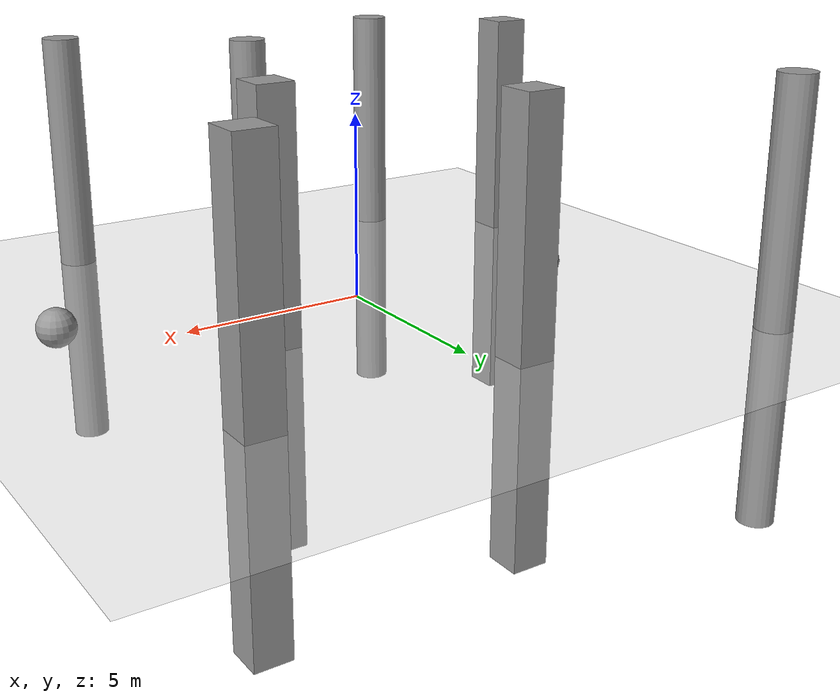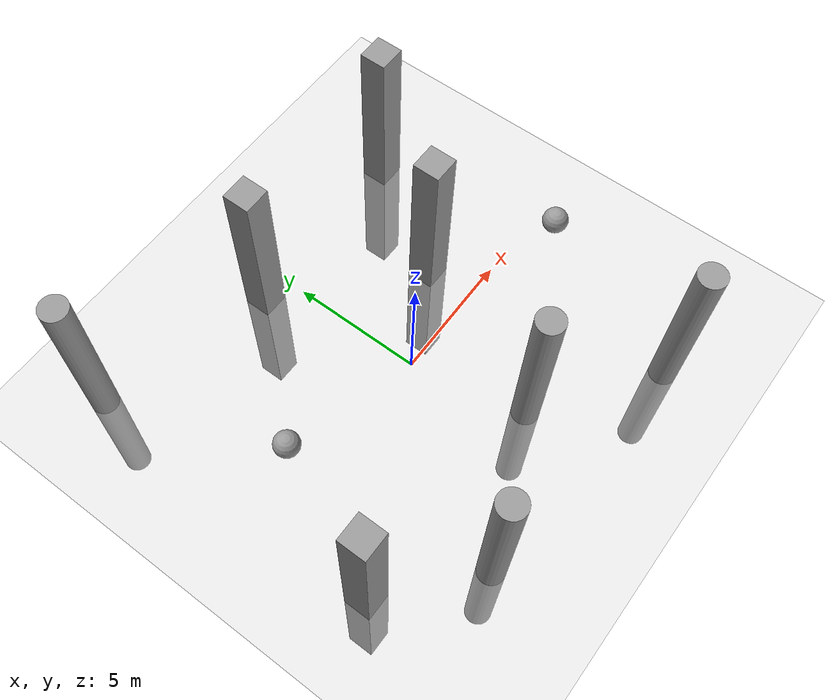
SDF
<sdf version="1.7">
 <world name="default">
  <light name="sun" type="directional">
   <pose>0 0 10 0 -0 0</pose>
   <diffuse>0.8 0.8 0.8 1</diffuse>
   <specular>0.2 0.2 0.2 1</specular>
   <attenuation>
    <range>1000</range>
    <constant>0.9</constant>
    <linear>0.01</linear>
    <quadratic>0.001</quadratic>
   </attenuation>
   <direction>-0.5 0.1 -0.9</direction>
   <spot><inner_angle>0</inner_angle><outer_angle>0</outer_angle><falloff>0</falloff></spot>
  </light>
  <model name="ground_plane">
   <static>1</static>
   <link name="link">
    <collision name="collision">
     <geometry><plane><normal>0 0 1</normal><size>100 100</size></plane></geometry>
     <surface>
      <contact><collide_bitmask>65535</collide_bitmask></contact>
      <friction><ode><mu>100</mu><mu2>50</mu2></ode></friction>
     </surface>
    </collision>
    <visual name="visual">
     <cast_shadows>0</cast_shadows>
     <geometry><plane><normal>0 0 1</normal><size>100 100</size></plane></geometry>
     <material>
      <script><uri>file://media/materials/scripts/gazebo.material</uri><name>Gazebo/Grey</name></script>
     </material>
    </visual>
   </link>
  </model>
  <gravity>0 0 -9.8</gravity>
  <magnetic_field>6e-06 2.3e-05 -4.2e-05</magnetic_field>
  <atmosphere type="adiabatic"/>
  <physics type="ode">
   <max_step_size>0.001</max_step_size>
   <real_time_factor>1</real_time_factor>
   <real_time_update_rate>1000</real_time_update_rate>
  </physics>
  <scene><ambient>0.4 0.4 0.4 1</ambient><background>0.7 0.7 0.7 1</background><shadows>1</shadows></scene>
  <spherical_coordinates>
   <surface_model>EARTH_WGS84</surface_model>
   <latitude_deg>0</latitude_deg>
   <longitude_deg>0</longitude_deg>
   <elevation>0</elevation>
   <heading_deg>0</heading_deg>
  </spherical_coordinates>
  <model name="unit_box">
   <static>1</static>
   <pose>6.22534 6.07045 0.499995 0 1e-05 0</pose>
   <link name="link">
    <inertial>
     <mass>1</mass>
     <inertia>
      <ixx>0.166667</ixx>
      <ixy>0</ixy>
      <ixz>0</ixz>
      <iyy>0.166667</iyy>
      <iyz>0</iyz>
      <izz>0.166667</izz>
     </inertia>
    </inertial>
    <collision name="collision"><geometry><box><size>1 1 12</size></box></geometry></collision>
    <visual name="visual">
     <geometry><box><size>1 1 12</size></box></geometry>
     <material>
      <script><name>Gazebo/Grey</name><uri>file://media/materials/scripts/gazebo.material</uri></script>
     </material>
    </visual>
   </link>
  </model>
  <model name="unit_sphere">
   <pose>8.03872 -0.837628 0.5 0 -0 0</pose>
   <link name="link">
    <inertial>
     <mass>1</mass>
     <inertia><ixx>0.1</ixx><ixy>0</ixy><ixz>0</ixz><iyy>0.1</iyy><iyz>0</iyz><izz>0.1</izz></inertia>
    </inertial>
    <collision name="collision"><geometry><sphere><radius>0.5</radius></sphere></geometry></collision>
    <visual name="visual">
     <geometry><sphere><radius>0.5</radius></sphere></geometry>
     <material>
      <script><name>Gazebo/Grey</name><uri>file://media/materials/scripts/gazebo.material</uri></script>
     </material>
    </visual>
   </link>
  </model>
  <model name="unit_cylinder">
   <static>1</static>
   <pose>5.16601 -7.30034 0.499997 4e-06 4e-06 -0</pose>
   <link name="link">
    <inertial>
     <mass>1</mass>
     <inertia><ixx>0.145833</ixx><ixy>0</ixy><ixz>0</ixz><iyy>0.145833</iyy><iyz>0</iyz><izz>0.125</izz></inertia>
    </inertial>
    <collision name="collision">
     <geometry><cylinder><radius>0.5</radius><length>12</length></cylinder></geometry>
    </collision>
    <visual name="visual">
     <geometry><cylinder><radius>0.5</radius><length>12</length></cylinder></geometry>
     <material>
      <script><name>Gazebo/Grey</name><uri>file://media/materials/scripts/gazebo.material</uri></script>
     </material>
    </visual>
   </link>
  </model>
  <model name="unit_box_0">
   <static>1</static>
   <pose>-1.03927 5.92532 0.499995 1e-05 -0 0</pose>
   <link name="link">
    <inertial>
     <mass>1</mass>
     <inertia>
      <ixx>0.166667</ixx>
      <ixy>0</ixy>
      <ixz>0</ixz>
      <iyy>0.166667</iyy>
      <iyz>0</iyz>
      <izz>0.166667</izz>
     </inertia>
    </inertial>
    <collision name="collision"><geometry><box><size>1 1 12</size></box></geometry></collision>
    <visual name="visual">
     <geometry><box><size>1 1 12</size></box></geometry>
     <material>
      <script><name>Gazebo/Grey</name><uri>file://media/materials/scripts/gazebo.material</uri></script>
     </material>
    </visual>
   </link>
  </model>
  <model name="unit_sphere_0">
   <pose>-5.1916 1.45077 0.5 0 -0 0</pose>
   <link name="link">
    <inertial>
     <mass>1</mass>
     <inertia><ixx>0.1</ixx><ixy>0</ixy><ixz>0</ixz><iyy>0.1</iyy><iyz>0</iyz><izz>0.1</izz></inertia>
    </inertial>
    <collision name="collision"><geometry><sphere><radius>0.5</radius></sphere></geometry></collision>
    <visual name="visual">
     <geometry><sphere><radius>0.5</radius></sphere></geometry>
     <material>
      <script><name>Gazebo/Grey</name><uri>file://media/materials/scripts/gazebo.material</uri></script>
     </material>
    </visual>
   </link>
  </model>
  <model name="unit_cylinder_0">
   <static>1</static>
   <pose>-4.47198 -6.5008 0.499997 0 -0 0</pose>
   <link name="link">
    <inertial>
     <mass>1</mass>
     <inertia><ixx>0.145833</ixx><ixy>0</ixy><ixz>0</ixz><iyy>0.145833</iyy><iyz>0</iyz><izz>0.125</izz></inertia>
    </inertial>
    <collision name="collision">
     <geometry><cylinder><radius>0.5</radius><length>12</length></cylinder></geometry>
    </collision>
    <visual name="visual">
     <geometry><cylinder><radius>0.5</radius><length>12</length></cylinder></geometry>
     <material>
      <script><name>Gazebo/Grey</name><uri>file://media/materials/scripts/gazebo.material</uri></script>
     </material>
    </visual>
   </link>
  </model>
  <model name="unit_cylinder_1">
   <static>1</static>
   <pose>0.910303 -4.25107 0.499992 -3e-06 4e-06 0</pose>
   <link name="link">
    <inertial>
     <mass>1</mass>
     <inertia><ixx>0.145833</ixx><ixy>0</ixy><ixz>0</ixz><iyy>0.145833</iyy><iyz>0</iyz><izz>0.125</izz></inertia>
    </inertial>
    <collision name="collision">
     <geometry><cylinder><radius>0.5</radius><length>12</length></cylinder></geometry>
    </collision>
    <visual name="visual">
     <geometry><cylinder><radius>0.5</radius><length>12</length></cylinder></geometry>
     <material>
      <script><name>Gazebo/Grey</name><uri>file://media/materials/scripts/gazebo.material</uri></script>
     </material>
    </visual>
   </link>
  </model>
  <model name="unit_box_1">
   <static>1</static>
   <pose>3.54033 1.87255 0.499995 1e-05 -0 0</pose>
   <link name="link">
    <inertial>
     <mass>1</mass>
     <inertia>
      <ixx>0.166667</ixx>
      <ixy>0</ixy>
      <ixz>0</ixz>
      <iyy>0.166667</iyy>
      <iyz>0</iyz>
      <izz>0.166667</izz>
     </inertia>
    </inertial>
    <collision name="collision"><geometry><box><size>1 1 12</size></box></geometry></collision>
    <visual name="visual">
     <geometry><box><size>1 1 12</size></box></geometry>
     <material>
      <script><name>Gazebo/Grey</name><uri>file://media/materials/scripts/gazebo.material</uri></script>
     </material>
    </visual>
   </link>
  </model>
  <model name="unit_box_2">
   <static>1</static>
   <pose>-7.63493 -3.82436 0.499995 0 1e-05 0</pose>
   <link name="link">
    <inertial>
     <mass>1</mass>
     <inertia>
      <ixx>0.166667</ixx>
      <ixy>0</ixy>
      <ixz>0</ixz>
      <iyy>0.166667</iyy>
      <iyz>0</iyz>
      <izz>0.166667</izz>
     </inertia>
    </inertial>
    <collision name="collision"><geometry><box><size>1 1 12</size></box></geometry></collision>
    <visual name="visual">
     <geometry><box><size>1 1 12</size></box></geometry>
     <material>
      <script><name>Gazebo/Grey</name><uri>file://media/materials/scripts/gazebo.material</uri></script>
     </material>
    </visual>
   </link>
  </model>
  <model name="unit_cylinder_2">
   <static>1</static>
   <pose>-7.63454 7.75183 0.499993 -3e-06 -3e-06 0</pose>
   <link name="link">
    <inertial>
     <mass>1</mass>
     <inertia><ixx>0.145833</ixx><ixy>0</ixy><ixz>0</ixz><iyy>0.145833</iyy><iyz>0</iyz><izz>0.125</izz></inertia>
    </inertial>
    <collision name="collision">
     <geometry><cylinder><radius>0.5</radius><length>12</length></cylinder></geometry>
    </collision>
    <visual name="visual">
     <geometry><cylinder><radius>0.5</radius><length>12</length></cylinder></geometry>
     <material>
      <script><name>Gazebo/Grey</name><uri>file://media/materials/scripts/gazebo.material</uri></script>
     </material>
    </visual>
   </link>
  </model>
 </world>
</sdf>
